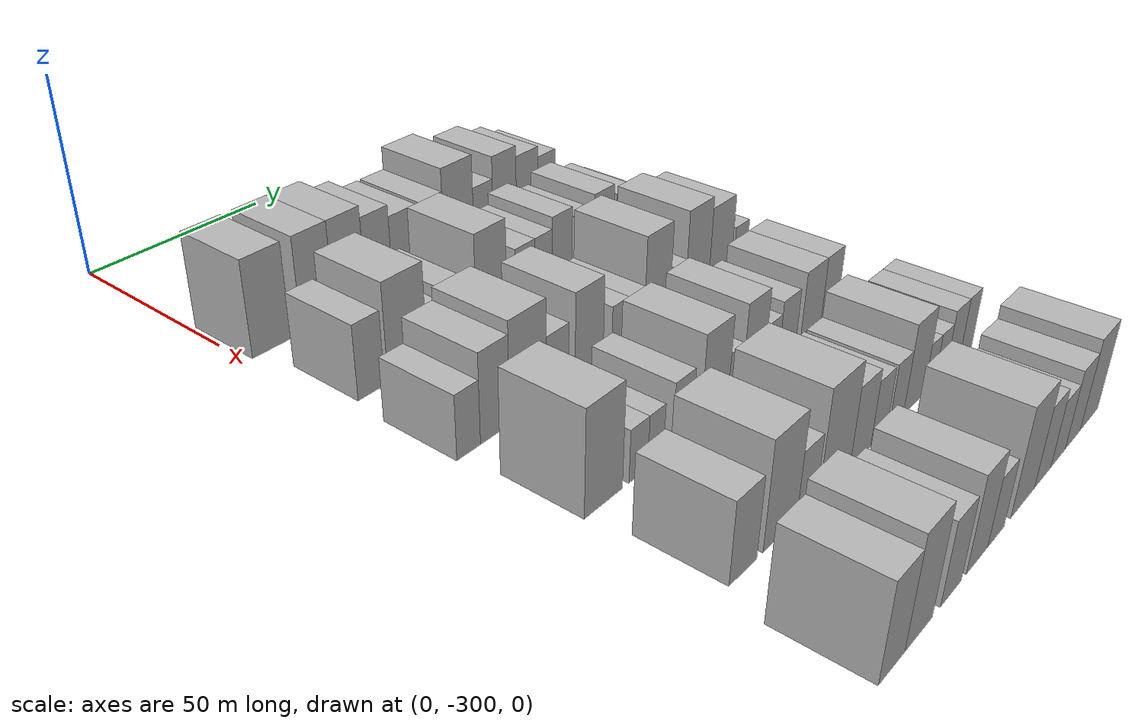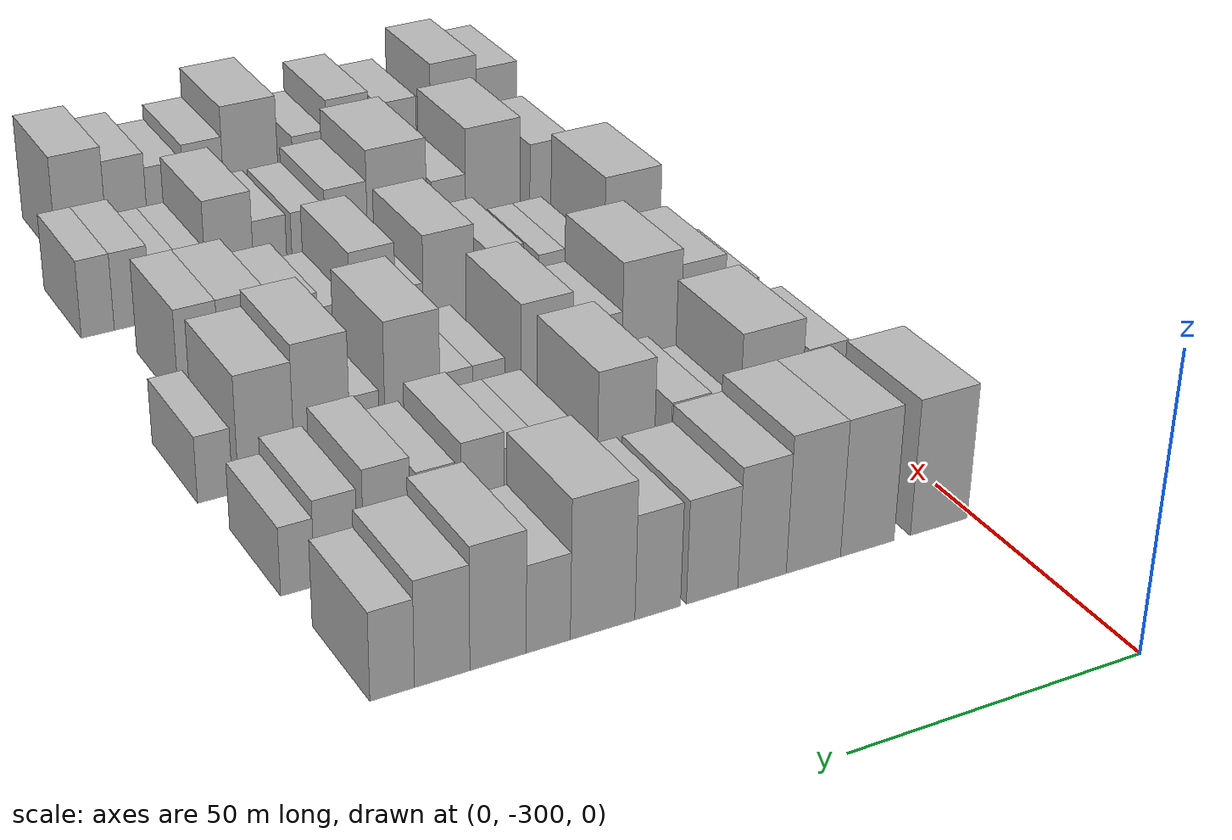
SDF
<sdf version="1.6">
 <world name="default">
  <model name="building_24">
   <static>1</static>
   <pose>50.0000 -293.4313 0 0.000000 0.000000 0.000000</pose>
   <link name="link">
    <pose>0 0 12.00 0 0 0</pose>
    <collision name="collision"><geometry><box><size>20.0000 10.5851 24.0000</size></box></geometry></collision>
    <visual name="visual">
     <cast_shadows>0</cast_shadows>
     <geometry><box><size>20.0000 10.5851 24.0000</size></box></geometry>
     <material>
      <script>
       <uri>model://HANNAS_wall/materials/scripts</uri>
       <uri>model://HANNAS_wall/materials/textures</uri>
       <name>vrc/HANNAS_wall</name>
      </script>
     </material>
    </visual>
   </link>
  </model>
  <model name="building_25">
   <static>1</static>
   <pose>50.0000 -280.2940 0 0.000000 0.000000 0.000000</pose>
   <link name="link">
    <pose>0 0 12.00 0 0 0</pose>
    <collision name="collision"><geometry><box><size>20.0000 9.6894 24.0000</size></box></geometry></collision>
    <visual name="visual">
     <cast_shadows>0</cast_shadows>
     <geometry><box><size>20.0000 9.6894 24.0000</size></box></geometry>
     <material>
      <script>
       <uri>model://HANNAS_wall/materials/scripts</uri>
       <uri>model://HANNAS_wall/materials/textures</uri>
       <name>vrc/HANNAS_wall</name>
      </script>
     </material>
    </visual>
   </link>
  </model>
  <model name="building_26">
   <static>1</static>
   <pose>50.0000 -270.6280 0 0.000000 0.000000 0.000000</pose>
   <link name="link">
    <pose>0 0 12.00 0 0 0</pose>
    <collision name="collision"><geometry><box><size>20.0000 9.6428 24.0000</size></box></geometry></collision>
    <visual name="visual">
     <cast_shadows>0</cast_shadows>
     <geometry><box><size>20.0000 9.6428 24.0000</size></box></geometry>
     <material>
      <script>
       <uri>model://HANNAS_wall/materials/scripts</uri>
       <uri>model://HANNAS_wall/materials/textures</uri>
       <name>vrc/HANNAS_wall</name>
      </script>
     </material>
    </visual>
   </link>
  </model>
  <model name="building_27">
   <static>1</static>
   <pose>50.0000 -261.5699 0 0.000000 0.000000 0.000000</pose>
   <link name="link">
    <pose>0 0 10.50 0 0 0</pose>
    <collision name="collision"><geometry><box><size>20.0000 8.4732 21.0000</size></box></geometry></collision>
    <visual name="visual">
     <cast_shadows>0</cast_shadows>
     <geometry><box><size>20.0000 8.4732 21.0000</size></box></geometry>
     <material>
      <script>
       <uri>model://HANNAS_wall/materials/scripts</uri>
       <uri>model://HANNAS_wall/materials/textures</uri>
       <name>vrc/HANNAS_wall</name>
      </script>
     </material>
    </visual>
   </link>
  </model>
  <model name="building_28">
   <static>1</static>
   <pose>50.0000 -252.9379 0 0.000000 0.000000 0.000000</pose>
   <link name="link">
    <pose>0 0 9.00 0 0 0</pose>
    <collision name="collision"><geometry><box><size>20.0000 8.7908 18.0000</size></box></geometry></collision>
    <visual name="visual">
     <cast_shadows>0</cast_shadows>
     <geometry><box><size>20.0000 8.7908 18.0000</size></box></geometry>
     <material>
      <script>
       <uri>model://HANNAS_wall/materials/scripts</uri>
       <uri>model://HANNAS_wall/materials/textures</uri>
       <name>vrc/HANNAS_wall</name>
      </script>
     </material>
    </visual>
   </link>
  </model>
  <model name="building_29">
   <static>1</static>
   <pose>50.0000 -243.7083 0 0.000000 0.000000 0.000000</pose>
   <link name="link">
    <pose>0 0 9.00 0 0 0</pose>
    <collision name="collision"><geometry><box><size>20.0000 7.6683 18.0000</size></box></geometry></collision>
    <visual name="visual">
     <cast_shadows>0</cast_shadows>
     <geometry><box><size>20.0000 7.6683 18.0000</size></box></geometry>
     <material>
      <script>
       <uri>model://HANNAS_wall/materials/scripts</uri>
       <uri>model://HANNAS_wall/materials/textures</uri>
       <name>vrc/HANNAS_wall</name>
      </script>
     </material>
    </visual>
   </link>
  </model>
  <model name="building_30">
   <static>1</static>
   <pose>50.0000 -234.5510 0 0.000000 0.000000 0.000000</pose>
   <link name="link">
    <pose>0 0 12.00 0 0 0</pose>
    <collision name="collision"><geometry><box><size>20.0000 10.6463 24.0000</size></box></geometry></collision>
    <visual name="visual">
     <cast_shadows>0</cast_shadows>
     <geometry><box><size>20.0000 10.6463 24.0000</size></box></geometry>
     <material>
      <script>
       <uri>model://HANNAS_wall/materials/scripts</uri>
       <uri>model://HANNAS_wall/materials/textures</uri>
       <name>vrc/HANNAS_wall</name>
      </script>
     </material>
    </visual>
   </link>
  </model>
  <model name="building_31">
   <static>1</static>
   <pose>50.0000 -225.6547 0 0.000000 0.000000 0.000000</pose>
   <link name="link">
    <pose>0 0 7.50 0 0 0</pose>
    <collision name="collision"><geometry><box><size>20.0000 7.1464 15.0000</size></box></geometry></collision>
    <visual name="visual">
     <cast_shadows>0</cast_shadows>
     <geometry><box><size>20.0000 7.1464 15.0000</size></box></geometry>
     <material>
      <script>
       <uri>model://HANNAS_wall/materials/scripts</uri>
       <uri>model://HANNAS_wall/materials/textures</uri>
       <name>vrc/HANNAS_wall</name>
      </script>
     </material>
    </visual>
   </link>
  </model>
  <model name="building_32">
   <static>1</static>
   <pose>50.0000 -217.6011 0 0.000000 0.000000 0.000000</pose>
   <link name="link">
    <pose>0 0 10.50 0 0 0</pose>
    <collision name="collision"><geometry><box><size>20.0000 8.9608 21.0000</size></box></geometry></collision>
    <visual name="visual">
     <cast_shadows>0</cast_shadows>
     <geometry><box><size>20.0000 8.9608 21.0000</size></box></geometry>
     <material>
      <script>
       <uri>model://HANNAS_wall/materials/scripts</uri>
       <uri>model://HANNAS_wall/materials/textures</uri>
       <name>vrc/HANNAS_wall</name>
      </script>
     </material>
    </visual>
   </link>
  </model>
  <model name="building_33">
   <static>1</static>
   <pose>50.0000 -208.8000 0 0.000000 0.000000 0.000000</pose>
   <link name="link">
    <pose>0 0 9.00 0 0 0</pose>
    <collision name="collision"><geometry><box><size>20.0000 8.6415 18.0000</size></box></geometry></collision>
    <visual name="visual">
     <cast_shadows>0</cast_shadows>
     <geometry><box><size>20.0000 8.6415 18.0000</size></box></geometry>
     <material>
      <script>
       <uri>model://HANNAS_wall/materials/scripts</uri>
       <uri>model://HANNAS_wall/materials/textures</uri>
       <name>vrc/HANNAS_wall</name>
      </script>
     </material>
    </visual>
   </link>
  </model>
  <model name="building_34">
   <static>1</static>
   <pose>50.0000 -201.0409 0 0.000000 0.000000 0.000000</pose>
   <link name="link">
    <pose>0 0 7.50 0 0 0</pose>
    <collision name="collision"><geometry><box><size>20.0000 6.8768 15.0000</size></box></geometry></collision>
    <visual name="visual">
     <cast_shadows>0</cast_shadows>
     <geometry><box><size>20.0000 6.8768 15.0000</size></box></geometry>
     <material>
      <script>
       <uri>model://HANNAS_wall/materials/scripts</uri>
       <uri>model://HANNAS_wall/materials/textures</uri>
       <name>vrc/HANNAS_wall</name>
      </script>
     </material>
    </visual>
   </link>
  </model>
  <model name="building_138">
   <static>1</static>
   <pose>79.0000 -291.2663 0 0.000000 0.000000 0.000000</pose>
   <link name="link">
    <pose>0 0 9.00 0 0 0</pose>
    <collision name="collision"><geometry><box><size>20.0000 7.3916 18.0000</size></box></geometry></collision>
    <visual name="visual">
     <cast_shadows>0</cast_shadows>
     <geometry><box><size>20.0000 7.3916 18.0000</size></box></geometry>
     <material>
      <script>
       <uri>model://HANNAS_wall/materials/scripts</uri>
       <uri>model://HANNAS_wall/materials/textures</uri>
       <name>vrc/HANNAS_wall</name>
      </script>
     </material>
    </visual>
   </link>
  </model>
  <model name="building_139">
   <static>1</static>
   <pose>79.0000 -280.8209 0 0.000000 0.000000 0.000000</pose>
   <link name="link">
    <pose>0 0 12.00 0 0 0</pose>
    <collision name="collision"><geometry><box><size>20.0000 11.4993 24.0000</size></box></geometry></collision>
    <visual name="visual">
     <cast_shadows>0</cast_shadows>
     <geometry><box><size>20.0000 11.4993 24.0000</size></box></geometry>
     <material>
      <script>
       <uri>model://HANNAS_wall/materials/scripts</uri>
       <uri>model://HANNAS_wall/materials/textures</uri>
       <name>vrc/HANNAS_wall</name>
      </script>
     </material>
    </visual>
   </link>
  </model>
  <model name="building_140">
   <static>1</static>
   <pose>79.0000 -272.3988 0 0.000000 0.000000 0.000000</pose>
   <link name="link">
    <pose>0 0 6.00 0 0 0</pose>
    <collision name="collision"><geometry><box><size>20.0000 5.3448 12.0000</size></box></geometry></collision>
    <visual name="visual">
     <cast_shadows>0</cast_shadows>
     <geometry><box><size>20.0000 5.3448 12.0000</size></box></geometry>
     <material>
      <script>
       <uri>model://HANNAS_wall/materials/scripts</uri>
       <uri>model://HANNAS_wall/materials/textures</uri>
       <name>vrc/HANNAS_wall</name>
      </script>
     </material>
    </visual>
   </link>
  </model>
  <model name="building_141">
   <static>1</static>
   <pose>79.0000 -266.1746 0 0.000000 0.000000 0.000000</pose>
   <link name="link">
    <pose>0 0 7.50 0 0 0</pose>
    <collision name="collision"><geometry><box><size>20.0000 7.1036 15.0000</size></box></geometry></collision>
    <visual name="visual">
     <cast_shadows>0</cast_shadows>
     <geometry><box><size>20.0000 7.1036 15.0000</size></box></geometry>
     <material>
      <script>
       <uri>model://HANNAS_wall/materials/scripts</uri>
       <uri>model://HANNAS_wall/materials/textures</uri>
       <name>vrc/HANNAS_wall</name>
      </script>
     </material>
    </visual>
   </link>
  </model>
  <model name="building_142">
   <static>1</static>
   <pose>79.0000 -254.5568 0 0.000000 0.000000 0.000000</pose>
   <link name="link">
    <pose>0 0 12.00 0 0 0</pose>
    <collision name="collision"><geometry><box><size>20.0000 10.1321 24.0000</size></box></geometry></collision>
    <visual name="visual">
     <cast_shadows>0</cast_shadows>
     <geometry><box><size>20.0000 10.1321 24.0000</size></box></geometry>
     <material>
      <script>
       <uri>model://HANNAS_wall/materials/scripts</uri>
       <uri>model://HANNAS_wall/materials/textures</uri>
       <name>vrc/HANNAS_wall</name>
      </script>
     </material>
    </visual>
   </link>
  </model>
  <model name="building_143">
   <static>1</static>
   <pose>79.0000 -243.0428 0 0.000000 0.000000 0.000000</pose>
   <link name="link">
    <pose>0 0 7.50 0 0 0</pose>
    <collision name="collision"><geometry><box><size>20.0000 6.8957 15.0000</size></box></geometry></collision>
    <visual name="visual">
     <cast_shadows>0</cast_shadows>
     <geometry><box><size>20.0000 6.8957 15.0000</size></box></geometry>
     <material>
      <script>
       <uri>model://HANNAS_wall/materials/scripts</uri>
       <uri>model://HANNAS_wall/materials/textures</uri>
       <name>vrc/HANNAS_wall</name>
      </script>
     </material>
    </visual>
   </link>
  </model>
  <model name="building_144">
   <static>1</static>
   <pose>79.0000 -236.4994 0 0.000000 0.000000 0.000000</pose>
   <link name="link">
    <pose>0 0 7.50 0 0 0</pose>
    <collision name="collision"><geometry><box><size>20.0000 6.1911 15.0000</size></box></geometry></collision>
    <visual name="visual">
     <cast_shadows>0</cast_shadows>
     <geometry><box><size>20.0000 6.1911 15.0000</size></box></geometry>
     <material>
      <script>
       <uri>model://HANNAS_wall/materials/scripts</uri>
       <uri>model://HANNAS_wall/materials/textures</uri>
       <name>vrc/HANNAS_wall</name>
      </script>
     </material>
    </visual>
   </link>
  </model>
  <model name="building_145">
   <static>1</static>
   <pose>79.0000 -229.7749 0 0.000000 0.000000 0.000000</pose>
   <link name="link">
    <pose>0 0 9.00 0 0 0</pose>
    <collision name="collision"><geometry><box><size>20.0000 7.2580 18.0000</size></box></geometry></collision>
    <visual name="visual">
     <cast_shadows>0</cast_shadows>
     <geometry><box><size>20.0000 7.2580 18.0000</size></box></geometry>
     <material>
      <script>
       <uri>model://HANNAS_wall/materials/scripts</uri>
       <uri>model://HANNAS_wall/materials/textures</uri>
       <name>vrc/HANNAS_wall</name>
      </script>
     </material>
    </visual>
   </link>
  </model>
  <model name="building_146">
   <static>1</static>
   <pose>79.0000 -221.9190 0 0.000000 0.000000 0.000000</pose>
   <link name="link">
    <pose>0 0 7.50 0 0 0</pose>
    <collision name="collision"><geometry><box><size>20.0000 6.4538 15.0000</size></box></geometry></collision>
    <visual name="visual">
     <cast_shadows>0</cast_shadows>
     <geometry><box><size>20.0000 6.4538 15.0000</size></box></geometry>
     <material>
      <script>
       <uri>model://HANNAS_wall/materials/scripts</uri>
       <uri>model://HANNAS_wall/materials/textures</uri>
       <name>vrc/HANNAS_wall</name>
      </script>
     </material>
    </visual>
   </link>
  </model>
  <model name="building_147">
   <static>1</static>
   <pose>79.0000 -213.8310 0 0.000000 0.000000 0.000000</pose>
   <link name="link">
    <pose>0 0 9.00 0 0 0</pose>
    <collision name="collision"><geometry><box><size>20.0000 7.7223 18.0000</size></box></geometry></collision>
    <visual name="visual">
     <cast_shadows>0</cast_shadows>
     <geometry><box><size>20.0000 7.7223 18.0000</size></box></geometry>
     <material>
      <script>
       <uri>model://HANNAS_wall/materials/scripts</uri>
       <uri>model://HANNAS_wall/materials/textures</uri>
       <name>vrc/HANNAS_wall</name>
      </script>
     </material>
    </visual>
   </link>
  </model>
  <model name="building_148">
   <static>1</static>
   <pose>79.0000 -205.4505 0 0.000000 0.000000 0.000000</pose>
   <link name="link">
    <pose>0 0 7.50 0 0 0</pose>
    <collision name="collision"><geometry><box><size>20.0000 7.0385 15.0000</size></box></geometry></collision>
    <visual name="visual">
     <cast_shadows>0</cast_shadows>
     <geometry><box><size>20.0000 7.0385 15.0000</size></box></geometry>
     <material>
      <script>
       <uri>model://HANNAS_wall/materials/scripts</uri>
       <uri>model://HANNAS_wall/materials/textures</uri>
       <name>vrc/HANNAS_wall</name>
      </script>
     </material>
    </visual>
   </link>
  </model>
  <model name="building_149">
   <static>1</static>
   <pose>79.0000 -199.1866 0 0.000000 0.000000 0.000000</pose>
   <link name="link">
    <pose>0 0 6.00 0 0 0</pose>
    <collision name="collision"><geometry><box><size>20.0000 5.4894 12.0000</size></box></geometry></collision>
    <visual name="visual">
     <cast_shadows>0</cast_shadows>
     <geometry><box><size>20.0000 5.4894 12.0000</size></box></geometry>
     <material>
      <script>
       <uri>model://HANNAS_wall/materials/scripts</uri>
       <uri>model://HANNAS_wall/materials/textures</uri>
       <name>vrc/HANNAS_wall</name>
      </script>
     </material>
    </visual>
   </link>
  </model>
  <model name="building_256">
   <static>1</static>
   <pose>108.0000 -293.1193 0 0.000000 0.000000 0.000000</pose>
   <link name="link">
    <pose>0 0 7.50 0 0 0</pose>
    <collision name="collision"><geometry><box><size>20.0000 6.5987 15.0000</size></box></geometry></collision>
    <visual name="visual">
     <cast_shadows>0</cast_shadows>
     <geometry><box><size>20.0000 6.5987 15.0000</size></box></geometry>
     <material>
      <script>
       <uri>model://HANNAS_wall/materials/scripts</uri>
       <uri>model://HANNAS_wall/materials/textures</uri>
       <name>vrc/HANNAS_wall</name>
      </script>
     </material>
    </visual>
   </link>
  </model>
  <model name="building_257">
   <static>1</static>
   <pose>108.0000 -285.6017 0 0.000000 0.000000 0.000000</pose>
   <link name="link">
    <pose>0 0 10.50 0 0 0</pose>
    <collision name="collision"><geometry><box><size>20.0000 8.4366 21.0000</size></box></geometry></collision>
    <visual name="visual">
     <cast_shadows>0</cast_shadows>
     <geometry><box><size>20.0000 8.4366 21.0000</size></box></geometry>
     <material>
      <script>
       <uri>model://HANNAS_wall/materials/scripts</uri>
       <uri>model://HANNAS_wall/materials/textures</uri>
       <name>vrc/HANNAS_wall</name>
      </script>
     </material>
    </visual>
   </link>
  </model>
  <model name="building_258">
   <static>1</static>
   <pose>108.0000 -275.7686 0 0.000000 0.000000 0.000000</pose>
   <link name="link">
    <pose>0 0 12.00 0 0 0</pose>
    <collision name="collision"><geometry><box><size>20.0000 11.2296 24.0000</size></box></geometry></collision>
    <visual name="visual">
     <cast_shadows>0</cast_shadows>
     <geometry><box><size>20.0000 11.2296 24.0000</size></box></geometry>
     <material>
      <script>
       <uri>model://HANNAS_wall/materials/scripts</uri>
       <uri>model://HANNAS_wall/materials/textures</uri>
       <name>vrc/HANNAS_wall</name>
      </script>
     </material>
    </visual>
   </link>
  </model>
  <model name="building_259">
   <static>1</static>
   <pose>108.0000 -266.5177 0 0.000000 0.000000 0.000000</pose>
   <link name="link">
    <pose>0 0 7.50 0 0 0</pose>
    <collision name="collision"><geometry><box><size>20.0000 7.2720 15.0000</size></box></geometry></collision>
    <visual name="visual">
     <cast_shadows>0</cast_shadows>
     <geometry><box><size>20.0000 7.2720 15.0000</size></box></geometry>
     <material>
      <script>
       <uri>model://HANNAS_wall/materials/scripts</uri>
       <uri>model://HANNAS_wall/materials/textures</uri>
       <name>vrc/HANNAS_wall</name>
      </script>
     </material>
    </visual>
   </link>
  </model>
  <model name="building_260">
   <static>1</static>
   <pose>108.0000 -256.1167 0 0.000000 0.000000 0.000000</pose>
   <link name="link">
    <pose>0 0 10.50 0 0 0</pose>
    <collision name="collision"><geometry><box><size>20.0000 9.5301 21.0000</size></box></geometry></collision>
    <visual name="visual">
     <cast_shadows>0</cast_shadows>
     <geometry><box><size>20.0000 9.5301 21.0000</size></box></geometry>
     <material>
      <script>
       <uri>model://HANNAS_wall/materials/scripts</uri>
       <uri>model://HANNAS_wall/materials/textures</uri>
       <name>vrc/HANNAS_wall</name>
      </script>
     </material>
    </visual>
   </link>
  </model>
  <model name="building_261">
   <static>1</static>
   <pose>108.0000 -245.4659 0 0.000000 0.000000 0.000000</pose>
   <link name="link">
    <pose>0 0 6.00 0 0 0</pose>
    <collision name="collision"><geometry><box><size>20.0000 5.7716 12.0000</size></box></geometry></collision>
    <visual name="visual">
     <cast_shadows>0</cast_shadows>
     <geometry><box><size>20.0000 5.7716 12.0000</size></box></geometry>
     <material>
      <script>
       <uri>model://HANNAS_wall/materials/scripts</uri>
       <uri>model://HANNAS_wall/materials/textures</uri>
       <name>vrc/HANNAS_wall</name>
      </script>
     </material>
    </visual>
   </link>
  </model>
  <model name="building_262">
   <static>1</static>
   <pose>108.0000 -239.6320 0 0.000000 0.000000 0.000000</pose>
   <link name="link">
    <pose>0 0 6.00 0 0 0</pose>
    <collision name="collision"><geometry><box><size>20.0000 5.8961 12.0000</size></box></geometry></collision>
    <visual name="visual">
     <cast_shadows>0</cast_shadows>
     <geometry><box><size>20.0000 5.8961 12.0000</size></box></geometry>
     <material>
      <script>
       <uri>model://HANNAS_wall/materials/scripts</uri>
       <uri>model://HANNAS_wall/materials/textures</uri>
       <name>vrc/HANNAS_wall</name>
      </script>
     </material>
    </visual>
   </link>
  </model>
  <model name="building_263">
   <static>1</static>
   <pose>108.0000 -231.8138 0 0.000000 0.000000 0.000000</pose>
   <link name="link">
    <pose>0 0 12.00 0 0 0</pose>
    <collision name="collision"><geometry><box><size>20.0000 9.7404 24.0000</size></box></geometry></collision>
    <visual name="visual">
     <cast_shadows>0</cast_shadows>
     <geometry><box><size>20.0000 9.7404 24.0000</size></box></geometry>
     <material>
      <script>
       <uri>model://HANNAS_wall/materials/scripts</uri>
       <uri>model://HANNAS_wall/materials/textures</uri>
       <name>vrc/HANNAS_wall</name>
      </script>
     </material>
    </visual>
   </link>
  </model>
  <model name="building_264">
   <static>1</static>
   <pose>108.0000 -223.3717 0 0.000000 0.000000 0.000000</pose>
   <link name="link">
    <pose>0 0 6.00 0 0 0</pose>
    <collision name="collision"><geometry><box><size>20.0000 5.1437 12.0000</size></box></geometry></collision>
    <visual name="visual">
     <cast_shadows>0</cast_shadows>
     <geometry><box><size>20.0000 5.1437 12.0000</size></box></geometry>
     <material>
      <script>
       <uri>model://HANNAS_wall/materials/scripts</uri>
       <uri>model://HANNAS_wall/materials/textures</uri>
       <name>vrc/HANNAS_wall</name>
      </script>
     </material>
    </visual>
   </link>
  </model>
  <model name="building_265">
   <static>1</static>
   <pose>108.0000 -215.9876 0 0.000000 0.000000 0.000000</pose>
   <link name="link">
    <pose>0 0 12.00 0 0 0</pose>
    <collision name="collision"><geometry><box><size>20.0000 9.6244 24.0000</size></box></geometry></collision>
    <visual name="visual">
     <cast_shadows>0</cast_shadows>
     <geometry><box><size>20.0000 9.6244 24.0000</size></box></geometry>
     <material>
      <script>
       <uri>model://HANNAS_wall/materials/scripts</uri>
       <uri>model://HANNAS_wall/materials/textures</uri>
       <name>vrc/HANNAS_wall</name>
      </script>
     </material>
    </visual>
   </link>
  </model>
  <model name="building_266">
   <static>1</static>
   <pose>108.0000 -206.3868 0 0.000000 0.000000 0.000000</pose>
   <link name="link">
    <pose>0 0 10.50 0 0 0</pose>
    <collision name="collision"><geometry><box><size>20.0000 9.5772 21.0000</size></box></geometry></collision>
    <visual name="visual">
     <cast_shadows>0</cast_shadows>
     <geometry><box><size>20.0000 9.5772 21.0000</size></box></geometry>
     <material>
      <script>
       <uri>model://HANNAS_wall/materials/scripts</uri>
       <uri>model://HANNAS_wall/materials/textures</uri>
       <name>vrc/HANNAS_wall</name>
      </script>
     </material>
    </visual>
   </link>
  </model>
  <model name="building_267">
   <static>1</static>
   <pose>108.0000 -197.6565 0 0.000000 0.000000 0.000000</pose>
   <link name="link">
    <pose>0 0 6.00 0 0 0</pose>
    <collision name="collision"><geometry><box><size>20.0000 5.8835 12.0000</size></box></geometry></collision>
    <visual name="visual">
     <cast_shadows>0</cast_shadows>
     <geometry><box><size>20.0000 5.8835 12.0000</size></box></geometry>
     <material>
      <script>
       <uri>model://HANNAS_wall/materials/scripts</uri>
       <uri>model://HANNAS_wall/materials/textures</uri>
       <name>vrc/HANNAS_wall</name>
      </script>
     </material>
    </visual>
   </link>
  </model>
  <model name="building_372">
   <static>1</static>
   <pose>137.0000 -288.5124 0 0.000000 0.000000 0.000000</pose>
   <link name="link">
    <pose>0 0 12.00 0 0 0</pose>
    <collision name="collision"><geometry><box><size>20.0000 11.2314 24.0000</size></box></geometry></collision>
    <visual name="visual">
     <cast_shadows>0</cast_shadows>
     <geometry><box><size>20.0000 11.2314 24.0000</size></box></geometry>
     <material>
      <script>
       <uri>model://HANNAS_wall/materials/scripts</uri>
       <uri>model://HANNAS_wall/materials/textures</uri>
       <name>vrc/HANNAS_wall</name>
      </script>
     </material>
    </visual>
   </link>
  </model>
  <model name="building_373">
   <static>1</static>
   <pose>137.0000 -277.9551 0 0.000000 0.000000 0.000000</pose>
   <link name="link">
    <pose>0 0 6.00 0 0 0</pose>
    <collision name="collision"><geometry><box><size>20.0000 5.8832 12.0000</size></box></geometry></collision>
    <visual name="visual">
     <cast_shadows>0</cast_shadows>
     <geometry><box><size>20.0000 5.8832 12.0000</size></box></geometry>
     <material>
      <script>
       <uri>model://HANNAS_wall/materials/scripts</uri>
       <uri>model://HANNAS_wall/materials/textures</uri>
       <name>vrc/HANNAS_wall</name>
      </script>
     </material>
    </visual>
   </link>
  </model>
  <model name="building_374">
   <static>1</static>
   <pose>137.0000 -272.4831 0 0.000000 0.000000 0.000000</pose>
   <link name="link">
    <pose>0 0 6.00 0 0 0</pose>
    <collision name="collision"><geometry><box><size>20.0000 5.0608 12.0000</size></box></geometry></collision>
    <visual name="visual">
     <cast_shadows>0</cast_shadows>
     <geometry><box><size>20.0000 5.0608 12.0000</size></box></geometry>
     <material>
      <script>
       <uri>model://HANNAS_wall/materials/scripts</uri>
       <uri>model://HANNAS_wall/materials/textures</uri>
       <name>vrc/HANNAS_wall</name>
      </script>
     </material>
    </visual>
   </link>
  </model>
  <model name="building_375">
   <static>1</static>
   <pose>137.0000 -263.6032 0 0.000000 0.000000 0.000000</pose>
   <link name="link">
    <pose>0 0 7.50 0 0 0</pose>
    <collision name="collision"><geometry><box><size>20.0000 6.6989 15.0000</size></box></geometry></collision>
    <visual name="visual">
     <cast_shadows>0</cast_shadows>
     <geometry><box><size>20.0000 6.6989 15.0000</size></box></geometry>
     <material>
      <script>
       <uri>model://HANNAS_wall/materials/scripts</uri>
       <uri>model://HANNAS_wall/materials/textures</uri>
       <name>vrc/HANNAS_wall</name>
      </script>
     </material>
    </visual>
   </link>
  </model>
  <model name="building_376">
   <static>1</static>
   <pose>137.0000 -252.4372 0 0.000000 0.000000 0.000000</pose>
   <link name="link">
    <pose>0 0 10.50 0 0 0</pose>
    <collision name="collision"><geometry><box><size>20.0000 9.6331 21.0000</size></box></geometry></collision>
    <visual name="visual">
     <cast_shadows>0</cast_shadows>
     <geometry><box><size>20.0000 9.6331 21.0000</size></box></geometry>
     <material>
      <script>
       <uri>model://HANNAS_wall/materials/scripts</uri>
       <uri>model://HANNAS_wall/materials/textures</uri>
       <name>vrc/HANNAS_wall</name>
      </script>
     </material>
    </visual>
   </link>
  </model>
  <model name="building_377">
   <static>1</static>
   <pose>137.0000 -245.0111 0 0.000000 0.000000 0.000000</pose>
   <link name="link">
    <pose>0 0 6.00 0 0 0</pose>
    <collision name="collision"><geometry><box><size>20.0000 5.2191 12.0000</size></box></geometry></collision>
    <visual name="visual">
     <cast_shadows>0</cast_shadows>
     <geometry><box><size>20.0000 5.2191 12.0000</size></box></geometry>
     <material>
      <script>
       <uri>model://HANNAS_wall/materials/scripts</uri>
       <uri>model://HANNAS_wall/materials/textures</uri>
       <name>vrc/HANNAS_wall</name>
      </script>
     </material>
    </visual>
   </link>
  </model>
  <model name="building_378">
   <static>1</static>
   <pose>137.0000 -238.1861 0 0.000000 0.000000 0.000000</pose>
   <link name="link">
    <pose>0 0 10.50 0 0 0</pose>
    <collision name="collision"><geometry><box><size>20.0000 8.4310 21.0000</size></box></geometry></collision>
    <visual name="visual">
     <cast_shadows>0</cast_shadows>
     <geometry><box><size>20.0000 8.4310 21.0000</size></box></geometry>
     <material>
      <script>
       <uri>model://HANNAS_wall/materials/scripts</uri>
       <uri>model://HANNAS_wall/materials/textures</uri>
       <name>vrc/HANNAS_wall</name>
      </script>
     </material>
    </visual>
   </link>
  </model>
  <model name="building_379">
   <static>1</static>
   <pose>137.0000 -231.0011 0 0.000000 0.000000 0.000000</pose>
   <link name="link">
    <pose>0 0 6.00 0 0 0</pose>
    <collision name="collision"><geometry><box><size>20.0000 5.9391 12.0000</size></box></geometry></collision>
    <visual name="visual">
     <cast_shadows>0</cast_shadows>
     <geometry><box><size>20.0000 5.9391 12.0000</size></box></geometry>
     <material>
      <script>
       <uri>model://HANNAS_wall/materials/scripts</uri>
       <uri>model://HANNAS_wall/materials/textures</uri>
       <name>vrc/HANNAS_wall</name>
      </script>
     </material>
    </visual>
   </link>
  </model>
  <model name="building_380">
   <static>1</static>
   <pose>137.0000 -224.4932 0 0.000000 0.000000 0.000000</pose>
   <link name="link">
    <pose>0 0 7.50 0 0 0</pose>
    <collision name="collision"><geometry><box><size>20.0000 7.0767 15.0000</size></box></geometry></collision>
    <visual name="visual">
     <cast_shadows>0</cast_shadows>
     <geometry><box><size>20.0000 7.0767 15.0000</size></box></geometry>
     <material>
      <script>
       <uri>model://HANNAS_wall/materials/scripts</uri>
       <uri>model://HANNAS_wall/materials/textures</uri>
       <name>vrc/HANNAS_wall</name>
      </script>
     </material>
    </visual>
   </link>
  </model>
  <model name="building_381">
   <static>1</static>
   <pose>137.0000 -214.5530 0 0.000000 0.000000 0.000000</pose>
   <link name="link">
    <pose>0 0 9.00 0 0 0</pose>
    <collision name="collision"><geometry><box><size>20.0000 8.8037 18.0000</size></box></geometry></collision>
    <visual name="visual">
     <cast_shadows>0</cast_shadows>
     <geometry><box><size>20.0000 8.8037 18.0000</size></box></geometry>
     <material>
      <script>
       <uri>model://HANNAS_wall/materials/scripts</uri>
       <uri>model://HANNAS_wall/materials/textures</uri>
       <name>vrc/HANNAS_wall</name>
      </script>
     </material>
    </visual>
   </link>
  </model>
  <model name="building_382">
   <static>1</static>
   <pose>137.0000 -206.4506 0 0.000000 0.000000 0.000000</pose>
   <link name="link">
    <pose>0 0 9.00 0 0 0</pose>
    <collision name="collision"><geometry><box><size>20.0000 7.4012 18.0000</size></box></geometry></collision>
    <visual name="visual">
     <cast_shadows>0</cast_shadows>
     <geometry><box><size>20.0000 7.4012 18.0000</size></box></geometry>
     <material>
      <script>
       <uri>model://HANNAS_wall/materials/scripts</uri>
       <uri>model://HANNAS_wall/materials/textures</uri>
       <name>vrc/HANNAS_wall</name>
      </script>
     </material>
    </visual>
   </link>
  </model>
  <model name="building_481">
   <static>1</static>
   <pose>166.0000 -287.6564 0 0.000000 0.000000 0.000000</pose>
   <link name="link">
    <pose>0 0 9.00 0 0 0</pose>
    <collision name="collision"><geometry><box><size>20.0000 8.6874 18.0000</size></box></geometry></collision>
    <visual name="visual">
     <cast_shadows>0</cast_shadows>
     <geometry><box><size>20.0000 8.6874 18.0000</size></box></geometry>
     <material>
      <script>
       <uri>model://HANNAS_wall/materials/scripts</uri>
       <uri>model://HANNAS_wall/materials/textures</uri>
       <name>vrc/HANNAS_wall</name>
      </script>
     </material>
    </visual>
   </link>
  </model>
  <model name="building_482">
   <static>1</static>
   <pose>166.0000 -275.6931 0 0.000000 0.000000 0.000000</pose>
   <link name="link">
    <pose>0 0 12.00 0 0 0</pose>
    <collision name="collision"><geometry><box><size>20.0000 11.2391 24.0000</size></box></geometry></collision>
    <visual name="visual">
     <cast_shadows>0</cast_shadows>
     <geometry><box><size>20.0000 11.2391 24.0000</size></box></geometry>
     <material>
      <script>
       <uri>model://HANNAS_wall/materials/scripts</uri>
       <uri>model://HANNAS_wall/materials/textures</uri>
       <name>vrc/HANNAS_wall</name>
      </script>
     </material>
    </visual>
   </link>
  </model>
  <model name="building_483">
   <static>1</static>
   <pose>166.0000 -266.6180 0 0.000000 0.000000 0.000000</pose>
   <link name="link">
    <pose>0 0 7.50 0 0 0</pose>
    <collision name="collision"><geometry><box><size>20.0000 6.9112 15.0000</size></box></geometry></collision>
    <visual name="visual">
     <cast_shadows>0</cast_shadows>
     <geometry><box><size>20.0000 6.9112 15.0000</size></box></geometry>
     <material>
      <script>
       <uri>model://HANNAS_wall/materials/scripts</uri>
       <uri>model://HANNAS_wall/materials/textures</uri>
       <name>vrc/HANNAS_wall</name>
      </script>
     </material>
    </visual>
   </link>
  </model>
  <model name="building_484">
   <static>1</static>
   <pose>166.0000 -256.2779 0 0.000000 0.000000 0.000000</pose>
   <link name="link">
    <pose>0 0 12.00 0 0 0</pose>
    <collision name="collision"><geometry><box><size>20.0000 11.7690 24.0000</size></box></geometry></collision>
    <visual name="visual">
     <cast_shadows>0</cast_shadows>
     <geometry><box><size>20.0000 11.7690 24.0000</size></box></geometry>
     <material>
      <script>
       <uri>model://HANNAS_wall/materials/scripts</uri>
       <uri>model://HANNAS_wall/materials/textures</uri>
       <name>vrc/HANNAS_wall</name>
      </script>
     </material>
    </visual>
   </link>
  </model>
  <model name="building_485">
   <static>1</static>
   <pose>166.0000 -246.2927 0 0.000000 0.000000 0.000000</pose>
   <link name="link">
    <pose>0 0 9.00 0 0 0</pose>
    <collision name="collision"><geometry><box><size>20.0000 8.2013 18.0000</size></box></geometry></collision>
    <visual name="visual">
     <cast_shadows>0</cast_shadows>
     <geometry><box><size>20.0000 8.2013 18.0000</size></box></geometry>
     <material>
      <script>
       <uri>model://HANNAS_wall/materials/scripts</uri>
       <uri>model://HANNAS_wall/materials/textures</uri>
       <name>vrc/HANNAS_wall</name>
      </script>
     </material>
    </visual>
   </link>
  </model>
  <model name="building_486">
   <static>1</static>
   <pose>166.0000 -238.9214 0 0.000000 0.000000 0.000000</pose>
   <link name="link">
    <pose>0 0 7.50 0 0 0</pose>
    <collision name="collision"><geometry><box><size>20.0000 6.5414 15.0000</size></box></geometry></collision>
    <visual name="visual">
     <cast_shadows>0</cast_shadows>
     <geometry><box><size>20.0000 6.5414 15.0000</size></box></geometry>
     <material>
      <script>
       <uri>model://HANNAS_wall/materials/scripts</uri>
       <uri>model://HANNAS_wall/materials/textures</uri>
       <name>vrc/HANNAS_wall</name>
      </script>
     </material>
    </visual>
   </link>
  </model>
  <model name="building_487">
   <static>1</static>
   <pose>166.0000 -231.4688 0 0.000000 0.000000 0.000000</pose>
   <link name="link">
    <pose>0 0 7.50 0 0 0</pose>
    <collision name="collision"><geometry><box><size>20.0000 6.3637 15.0000</size></box></geometry></collision>
    <visual name="visual">
     <cast_shadows>0</cast_shadows>
     <geometry><box><size>20.0000 6.3637 15.0000</size></box></geometry>
     <material>
      <script>
       <uri>model://HANNAS_wall/materials/scripts</uri>
       <uri>model://HANNAS_wall/materials/textures</uri>
       <name>vrc/HANNAS_wall</name>
      </script>
     </material>
    </visual>
   </link>
  </model>
  <model name="building_488">
   <static>1</static>
   <pose>166.0000 -223.7727 0 0.000000 0.000000 0.000000</pose>
   <link name="link">
    <pose>0 0 10.50 0 0 0</pose>
    <collision name="collision"><geometry><box><size>20.0000 9.0286 21.0000</size></box></geometry></collision>
    <visual name="visual">
     <cast_shadows>0</cast_shadows>
     <geometry><box><size>20.0000 9.0286 21.0000</size></box></geometry>
     <material>
      <script>
       <uri>model://HANNAS_wall/materials/scripts</uri>
       <uri>model://HANNAS_wall/materials/textures</uri>
       <name>vrc/HANNAS_wall</name>
      </script>
     </material>
    </visual>
   </link>
  </model>
  <model name="building_489">
   <static>1</static>
   <pose>166.0000 -216.7372 0 0.000000 0.000000 0.000000</pose>
   <link name="link">
    <pose>0 0 6.00 0 0 0</pose>
    <collision name="collision"><geometry><box><size>20.0000 5.0423 12.0000</size></box></geometry></collision>
    <visual name="visual">
     <cast_shadows>0</cast_shadows>
     <geometry><box><size>20.0000 5.0423 12.0000</size></box></geometry>
     <material>
      <script>
       <uri>model://HANNAS_wall/materials/scripts</uri>
       <uri>model://HANNAS_wall/materials/textures</uri>
       <name>vrc/HANNAS_wall</name>
      </script>
     </material>
    </visual>
   </link>
  </model>
  <model name="building_490">
   <static>1</static>
   <pose>166.0000 -211.4744 0 0.000000 0.000000 0.000000</pose>
   <link name="link">
    <pose>0 0 6.00 0 0 0</pose>
    <collision name="collision"><geometry><box><size>20.0000 5.4833 12.0000</size></box></geometry></collision>
    <visual name="visual">
     <cast_shadows>0</cast_shadows>
     <geometry><box><size>20.0000 5.4833 12.0000</size></box></geometry>
     <material>
      <script>
       <uri>model://HANNAS_wall/materials/scripts</uri>
       <uri>model://HANNAS_wall/materials/textures</uri>
       <name>vrc/HANNAS_wall</name>
      </script>
     </material>
    </visual>
   </link>
  </model>
  <model name="building_491">
   <static>1</static>
   <pose>166.0000 -205.3334 0 0.000000 0.000000 0.000000</pose>
   <link name="link">
    <pose>0 0 7.50 0 0 0</pose>
    <collision name="collision"><geometry><box><size>20.0000 6.7987 15.0000</size></box></geometry></collision>
    <visual name="visual">
     <cast_shadows>0</cast_shadows>
     <geometry><box><size>20.0000 6.7987 15.0000</size></box></geometry>
     <material>
      <script>
       <uri>model://HANNAS_wall/materials/scripts</uri>
       <uri>model://HANNAS_wall/materials/textures</uri>
       <name>vrc/HANNAS_wall</name>
      </script>
     </material>
    </visual>
   </link>
  </model>
  <model name="building_492">
   <static>1</static>
   <pose>166.0000 -198.9252 0 0.000000 0.000000 0.000000</pose>
   <link name="link">
    <pose>0 0 7.50 0 0 0</pose>
    <collision name="collision"><geometry><box><size>20.0000 6.0178 15.0000</size></box></geometry></collision>
    <visual name="visual">
     <cast_shadows>0</cast_shadows>
     <geometry><box><size>20.0000 6.0178 15.0000</size></box></geometry>
     <material>
      <script>
       <uri>model://HANNAS_wall/materials/scripts</uri>
       <uri>model://HANNAS_wall/materials/textures</uri>
       <name>vrc/HANNAS_wall</name>
      </script>
     </material>
    </visual>
   </link>
  </model>
  <model name="building_595">
   <static>1</static>
   <pose>195.0000 -291.1656 0 0.000000 0.000000 0.000000</pose>
   <link name="link">
    <pose>0 0 10.50 0 0 0</pose>
    <collision name="collision"><geometry><box><size>20.0000 8.8214 21.0000</size></box></geometry></collision>
    <visual name="visual">
     <cast_shadows>0</cast_shadows>
     <geometry><box><size>20.0000 8.8214 21.0000</size></box></geometry>
     <material>
      <script>
       <uri>model://HANNAS_wall/materials/scripts</uri>
       <uri>model://HANNAS_wall/materials/textures</uri>
       <name>vrc/HANNAS_wall</name>
      </script>
     </material>
    </visual>
   </link>
  </model>
  <model name="building_596">
   <static>1</static>
   <pose>195.0000 -281.8745 0 0.000000 0.000000 0.000000</pose>
   <link name="link">
    <pose>0 0 12.00 0 0 0</pose>
    <collision name="collision"><geometry><box><size>20.0000 9.7606 24.0000</size></box></geometry></collision>
    <visual name="visual">
     <cast_shadows>0</cast_shadows>
     <geometry><box><size>20.0000 9.7606 24.0000</size></box></geometry>
     <material>
      <script>
       <uri>model://HANNAS_wall/materials/scripts</uri>
       <uri>model://HANNAS_wall/materials/textures</uri>
       <name>vrc/HANNAS_wall</name>
      </script>
     </material>
    </visual>
   </link>
  </model>
  <model name="building_597">
   <static>1</static>
   <pose>195.0000 -270.0154 0 0.000000 0.000000 0.000000</pose>
   <link name="link">
    <pose>0 0 9.00 0 0 0</pose>
    <collision name="collision"><geometry><box><size>20.0000 7.9576 18.0000</size></box></geometry></collision>
    <visual name="visual">
     <cast_shadows>0</cast_shadows>
     <geometry><box><size>20.0000 7.9576 18.0000</size></box></geometry>
     <material>
      <script>
       <uri>model://HANNAS_wall/materials/scripts</uri>
       <uri>model://HANNAS_wall/materials/textures</uri>
       <name>vrc/HANNAS_wall</name>
      </script>
     </material>
    </visual>
   </link>
  </model>
  <model name="building_598">
   <static>1</static>
   <pose>195.0000 -259.6546 0 0.000000 0.000000 0.000000</pose>
   <link name="link">
    <pose>0 0 10.50 0 0 0</pose>
    <collision name="collision"><geometry><box><size>20.0000 8.7642 21.0000</size></box></geometry></collision>
    <visual name="visual">
     <cast_shadows>0</cast_shadows>
     <geometry><box><size>20.0000 8.7642 21.0000</size></box></geometry>
     <material>
      <script>
       <uri>model://HANNAS_wall/materials/scripts</uri>
       <uri>model://HANNAS_wall/materials/textures</uri>
       <name>vrc/HANNAS_wall</name>
      </script>
     </material>
    </visual>
   </link>
  </model>
  <model name="building_599">
   <static>1</static>
   <pose>195.0000 -251.7747 0 0.000000 0.000000 0.000000</pose>
   <link name="link">
    <pose>0 0 7.50 0 0 0</pose>
    <collision name="collision"><geometry><box><size>20.0000 6.9957 15.0000</size></box></geometry></collision>
    <visual name="visual">
     <cast_shadows>0</cast_shadows>
     <geometry><box><size>20.0000 6.9957 15.0000</size></box></geometry>
     <material>
      <script>
       <uri>model://HANNAS_wall/materials/scripts</uri>
       <uri>model://HANNAS_wall/materials/textures</uri>
       <name>vrc/HANNAS_wall</name>
      </script>
     </material>
    </visual>
   </link>
  </model>
  <model name="building_600">
   <static>1</static>
   <pose>195.0000 -239.7971 0 0.000000 0.000000 0.000000</pose>
   <link name="link">
    <pose>0 0 12.00 0 0 0</pose>
    <collision name="collision"><geometry><box><size>20.0000 10.9596 24.0000</size></box></geometry></collision>
    <visual name="visual">
     <cast_shadows>0</cast_shadows>
     <geometry><box><size>20.0000 10.9596 24.0000</size></box></geometry>
     <material>
      <script>
       <uri>model://HANNAS_wall/materials/scripts</uri>
       <uri>model://HANNAS_wall/materials/textures</uri>
       <name>vrc/HANNAS_wall</name>
      </script>
     </material>
    </visual>
   </link>
  </model>
  <model name="building_601">
   <static>1</static>
   <pose>195.0000 -230.3805 0 0.000000 0.000000 0.000000</pose>
   <link name="link">
    <pose>0 0 9.00 0 0 0</pose>
    <collision name="collision"><geometry><box><size>20.0000 7.8735 18.0000</size></box></geometry></collision>
    <visual name="visual">
     <cast_shadows>0</cast_shadows>
     <geometry><box><size>20.0000 7.8735 18.0000</size></box></geometry>
     <material>
      <script>
       <uri>model://HANNAS_wall/materials/scripts</uri>
       <uri>model://HANNAS_wall/materials/textures</uri>
       <name>vrc/HANNAS_wall</name>
      </script>
     </material>
    </visual>
   </link>
  </model>
  <model name="building_602">
   <static>1</static>
   <pose>195.0000 -222.7583 0 0.000000 0.000000 0.000000</pose>
   <link name="link">
    <pose>0 0 7.50 0 0 0</pose>
    <collision name="collision"><geometry><box><size>20.0000 7.3711 15.0000</size></box></geometry></collision>
    <visual name="visual">
     <cast_shadows>0</cast_shadows>
     <geometry><box><size>20.0000 7.3711 15.0000</size></box></geometry>
     <material>
      <script>
       <uri>model://HANNAS_wall/materials/scripts</uri>
       <uri>model://HANNAS_wall/materials/textures</uri>
       <name>vrc/HANNAS_wall</name>
      </script>
     </material>
    </visual>
   </link>
  </model>
  <model name="building_603">
   <static>1</static>
   <pose>195.0000 -215.0855 0 0.000000 0.000000 0.000000</pose>
   <link name="link">
    <pose>0 0 9.00 0 0 0</pose>
    <collision name="collision"><geometry><box><size>20.0000 7.9746 18.0000</size></box></geometry></collision>
    <visual name="visual">
     <cast_shadows>0</cast_shadows>
     <geometry><box><size>20.0000 7.9746 18.0000</size></box></geometry>
     <material>
      <script>
       <uri>model://HANNAS_wall/materials/scripts</uri>
       <uri>model://HANNAS_wall/materials/textures</uri>
       <name>vrc/HANNAS_wall</name>
      </script>
     </material>
    </visual>
   </link>
  </model>
  <model name="building_604">
   <static>1</static>
   <pose>195.0000 -206.2278 0 0.000000 0.000000 0.000000</pose>
   <link name="link">
    <pose>0 0 10.50 0 0 0</pose>
    <collision name="collision"><geometry><box><size>20.0000 9.7407 21.0000</size></box></geometry></collision>
    <visual name="visual">
     <cast_shadows>0</cast_shadows>
     <geometry><box><size>20.0000 9.7407 21.0000</size></box></geometry>
     <material>
      <script>
       <uri>model://HANNAS_wall/materials/scripts</uri>
       <uri>model://HANNAS_wall/materials/textures</uri>
       <name>vrc/HANNAS_wall</name>
      </script>
     </material>
    </visual>
   </link>
  </model>
 </world>
</sdf>
